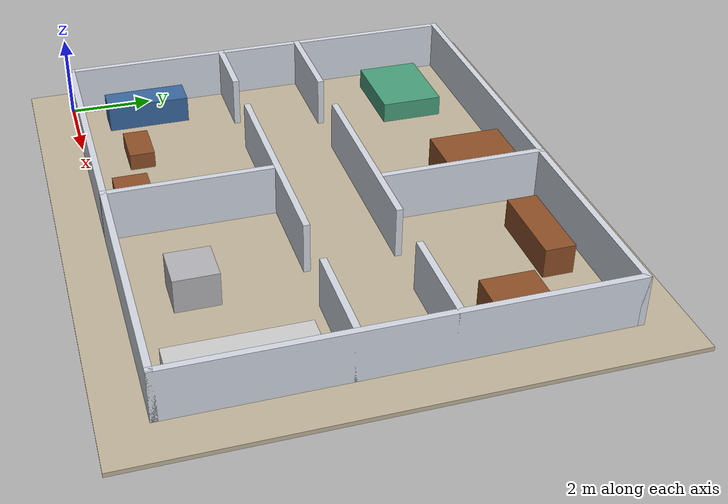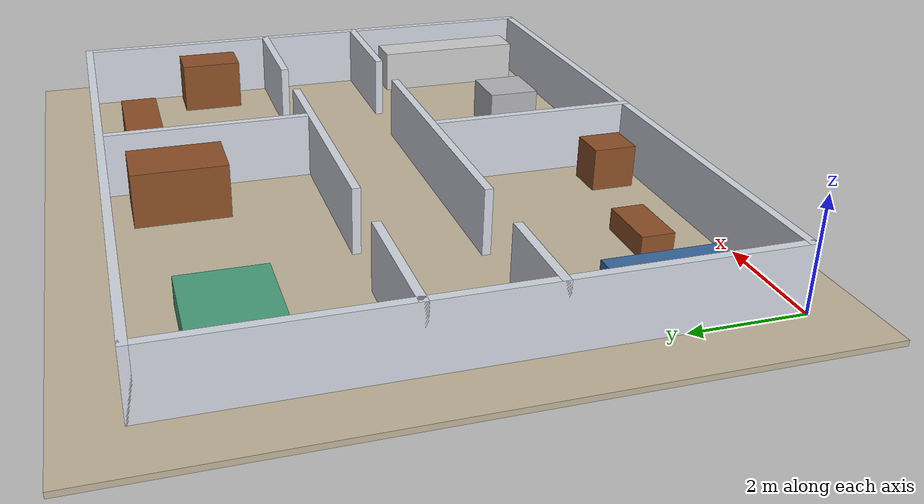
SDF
<?xml version="1.0"?>
<sdf version="1.6"><world name="jev_house">
  <plugin name="gazebo_state" filename="libgazebo_ros_state.so"><ros><namespace>/</namespace></ros><update_rate>20.0</update_rate></plugin>
  <gravity>0 0 -9.81</gravity>
  <physics type="ode"><max_step_size>0.001</max_step_size><real_time_update_rate>1000</real_time_update_rate></physics>
  <scene><ambient>0.6 0.6 0.6 1</ambient><shadows>false</shadows></scene>
  <light name="sun" type="directional"><pose>0 0 12 0 0 0</pose><diffuse>0.8 0.8 0.8 1</diffuse>
    <specular>0.2 0.2 0.2 1</specular><direction>-0.3 0.2 -1</direction><cast_shadows>false</cast_shadows></light>
  <gui fullscreen="0"><camera name="user_camera"><pose>6 -3 14 0 1.08 1.57</pose>
    <view_controller>orbit</view_controller></camera></gui>
  <model name="floor"><static>true</static><pose>6 5 -0.05 0 0 0</pose><link name="floor">
    <collision name="floor"><geometry><box><size>14 12 0.1</size></box></geometry></collision>
    <visual name="floor"><geometry><box><size>14 12 0.1</size></box></geometry>
      <material><ambient>0.75 0.70 0.60 1</ambient><diffuse>0.75 0.70 0.60 1</diffuse></material></visual>
  </link></model>
  <model name="south"><static>true</static>
      <pose>6.0 0.075 0.6 0 0 0</pose><link name="body">
      <collision name="collision"><geometry><box><size>12 0.15 1.2</size></box></geometry></collision>
      <visual name="visual"><geometry><box><size>12 0.15 1.2</size></box></geometry>
      <material><ambient>0.82 0.84 0.88 1</ambient><diffuse>0.82 0.84 0.88 1</diffuse></material></visual>
      </link></model>
<model name="north"><static>true</static>
      <pose>6.0 9.925 0.6 0 0 0</pose><link name="body">
      <collision name="collision"><geometry><box><size>12 0.15000000000000036 1.2</size></box></geometry></collision>
      <visual name="visual"><geometry><box><size>12 0.15000000000000036 1.2</size></box></geometry>
      <material><ambient>0.82 0.84 0.88 1</ambient><diffuse>0.82 0.84 0.88 1</diffuse></material></visual>
      </link></model>
<model name="west"><static>true</static>
      <pose>0.075 5.0 0.6 0 0 0</pose><link name="body">
      <collision name="collision"><geometry><box><size>0.15 10 1.2</size></box></geometry></collision>
      <visual name="visual"><geometry><box><size>0.15 10 1.2</size></box></geometry>
      <material><ambient>0.82 0.84 0.88 1</ambient><diffuse>0.82 0.84 0.88 1</diffuse></material></visual>
      </link></model>
<model name="east"><static>true</static>
      <pose>11.925 5.0 0.6 0 0 0</pose><link name="body">
      <collision name="collision"><geometry><box><size>0.15000000000000036 10 1.2</size></box></geometry></collision>
      <visual name="visual"><geometry><box><size>0.15000000000000036 10 1.2</size></box></geometry>
      <material><ambient>0.82 0.84 0.88 1</ambient><diffuse>0.82 0.84 0.88 1</diffuse></material></visual>
      </link></model>
<model name="living_hall_left"><static>true</static>
      <pose>0.9 3.9749999999999996 0.6 0 0 0</pose><link name="body">
      <collision name="collision"><geometry><box><size>1.8 0.1499999999999999 1.2</size></box></geometry></collision>
      <visual name="visual"><geometry><box><size>1.8 0.1499999999999999 1.2</size></box></geometry>
      <material><ambient>0.82 0.84 0.88 1</ambient><diffuse>0.82 0.84 0.88 1</diffuse></material></visual>
      </link></model>
<model name="living_hall_right"><static>true</static>
      <pose>5.7 3.9749999999999996 0.6 0 0 0</pose><link name="body">
      <collision name="collision"><geometry><box><size>5.4 0.1499999999999999 1.2</size></box></geometry></collision>
      <visual name="visual"><geometry><box><size>5.4 0.1499999999999999 1.2</size></box></geometry>
      <material><ambient>0.82 0.84 0.88 1</ambient><diffuse>0.82 0.84 0.88 1</diffuse></material></visual>
      </link></model>
<model name="kitchen_hall_right"><static>true</static>
      <pose>10.8 3.9749999999999996 0.6 0 0 0</pose><link name="body">
      <collision name="collision"><geometry><box><size>2.4000000000000004 0.1499999999999999 1.2</size></box></geometry></collision>
      <visual name="visual"><geometry><box><size>2.4000000000000004 0.1499999999999999 1.2</size></box></geometry>
      <material><ambient>0.82 0.84 0.88 1</ambient><diffuse>0.82 0.84 0.88 1</diffuse></material></visual>
      </link></model>
<model name="kitchen_divider"><static>true</static>
      <pose>5.975 1.95 0.6 0 0 0</pose><link name="body">
      <collision name="collision"><geometry><box><size>0.14999999999999947 3.9 1.2</size></box></geometry></collision>
      <visual name="visual"><geometry><box><size>0.14999999999999947 3.9 1.2</size></box></geometry>
      <material><ambient>0.82 0.84 0.88 1</ambient><diffuse>0.82 0.84 0.88 1</diffuse></material></visual>
      </link></model>
<model name="bedroom_hall_left"><static>true</static>
      <pose>1.2 6.025 0.6 0 0 0</pose><link name="body">
      <collision name="collision"><geometry><box><size>2.4 0.14999999999999947 1.2</size></box></geometry></collision>
      <visual name="visual"><geometry><box><size>2.4 0.14999999999999947 1.2</size></box></geometry>
      <material><ambient>0.82 0.84 0.88 1</ambient><diffuse>0.82 0.84 0.88 1</diffuse></material></visual>
      </link></model>
<model name="bedroom_hall_right"><static>true</static>
      <pose>6.0 6.025 0.6 0 0 0</pose><link name="body">
      <collision name="collision"><geometry><box><size>4.800000000000001 0.14999999999999947 1.2</size></box></geometry></collision>
      <visual name="visual"><geometry><box><size>4.800000000000001 0.14999999999999947 1.2</size></box></geometry>
      <material><ambient>0.82 0.84 0.88 1</ambient><diffuse>0.82 0.84 0.88 1</diffuse></material></visual>
      </link></model>
<model name="office_hall_right"><static>true</static>
      <pose>10.8 6.025 0.6 0 0 0</pose><link name="body">
      <collision name="collision"><geometry><box><size>2.4000000000000004 0.14999999999999947 1.2</size></box></geometry></collision>
      <visual name="visual"><geometry><box><size>2.4000000000000004 0.14999999999999947 1.2</size></box></geometry>
      <material><ambient>0.82 0.84 0.88 1</ambient><diffuse>0.82 0.84 0.88 1</diffuse></material></visual>
      </link></model>
<model name="office_divider"><static>true</static>
      <pose>6.975 8.05 0.6 0 0 0</pose><link name="body">
      <collision name="collision"><geometry><box><size>0.14999999999999947 3.9000000000000004 1.2</size></box></geometry></collision>
      <visual name="visual"><geometry><box><size>0.14999999999999947 3.9000000000000004 1.2</size></box></geometry>
      <material><ambient>0.82 0.84 0.88 1</ambient><diffuse>0.82 0.84 0.88 1</diffuse></material></visual>
      </link></model>
<model name="sofa"><static>true</static>
      <pose>0.925 1.7999999999999998 0.325 0 0 0</pose><link name="body">
      <collision name="collision"><geometry><box><size>0.75 1.9999999999999998 0.65</size></box></geometry></collision>
      <visual name="visual"><geometry><box><size>0.75 1.9999999999999998 0.65</size></box></geometry>
      <material><ambient>0.22 0.40 0.62 1</ambient><diffuse>0.22 0.40 0.62 1</diffuse></material></visual>
      </link></model>
<model name="coffee_table"><static>true</static>
      <pose>2.75 1.3 0.2 0 0 0</pose><link name="body">
      <collision name="collision"><geometry><box><size>1.0999999999999996 0.6000000000000001 0.4</size></box></geometry></collision>
      <visual name="visual"><geometry><box><size>1.0999999999999996 0.6000000000000001 0.4</size></box></geometry>
      <material><ambient>0.55 0.31 0.15 1</ambient><diffuse>0.55 0.31 0.15 1</diffuse></material></visual>
      </link></model>
<model name="living_cabinet"><static>true</static>
      <pose>5.15 0.8 0.4 0 0 0</pose><link name="body">
      <collision name="collision"><geometry><box><size>0.7000000000000002 0.7999999999999999 0.8</size></box></geometry></collision>
      <visual name="visual"><geometry><box><size>0.7000000000000002 0.7999999999999999 0.8</size></box></geometry>
      <material><ambient>0.55 0.31 0.15 1</ambient><diffuse>0.55 0.31 0.15 1</diffuse></material></visual>
      </link></model>
<model name="kitchen_island"><static>true</static>
      <pose>8.5 1.5 0.4 0 0 0</pose><link name="body">
      <collision name="collision"><geometry><box><size>1 1.0 0.8</size></box></geometry></collision>
      <visual name="visual"><geometry><box><size>1 1.0 0.8</size></box></geometry>
      <material><ambient>0.7 0.7 0.72 1</ambient><diffuse>0.7 0.7 0.72 1</diffuse></material></visual>
      </link></model>
<model name="kitchen_counter"><static>true</static>
      <pose>11.35 1.9 0.425 0 0 0</pose><link name="body">
      <collision name="collision"><geometry><box><size>0.6999999999999993 3.0 0.85</size></box></geometry></collision>
      <visual name="visual"><geometry><box><size>0.6999999999999993 3.0 0.85</size></box></geometry>
      <material><ambient>0.8 0.8 0.8 1</ambient><diffuse>0.8 0.8 0.8 1</diffuse></material></visual>
      </link></model>
<model name="bed"><static>true</static>
      <pose>1.7999999999999998 8.35 0.25 0 0 0</pose><link name="body">
      <collision name="collision"><geometry><box><size>1.9999999999999998 1.5 0.5</size></box></geometry></collision>
      <visual name="visual"><geometry><box><size>1.9999999999999998 1.5 0.5</size></box></geometry>
      <material><ambient>0.28 0.62 0.48 1</ambient><diffuse>0.28 0.62 0.48 1</diffuse></material></visual>
      </link></model>
<model name="wardrobe"><static>true</static>
      <pose>6.05 8.65 0.5 0 0 0</pose><link name="body">
      <collision name="collision"><geometry><box><size>1.0999999999999996 1.7000000000000002 1.0</size></box></geometry></collision>
      <visual name="visual"><geometry><box><size>1.0999999999999996 1.7000000000000002 1.0</size></box></geometry>
      <material><ambient>0.55 0.31 0.15 1</ambient><diffuse>0.55 0.31 0.15 1</diffuse></material></visual>
      </link></model>
<model name="office_desk"><static>true</static>
      <pose>9.0 9.05 0.35 0 0 0</pose><link name="body">
      <collision name="collision"><geometry><box><size>2 0.7000000000000011 0.7</size></box></geometry></collision>
      <visual name="visual"><geometry><box><size>2 0.7000000000000011 0.7</size></box></geometry>
      <material><ambient>0.55 0.31 0.15 1</ambient><diffuse>0.55 0.31 0.15 1</diffuse></material></visual>
      </link></model>
<model name="bookcase"><static>true</static>
      <pose>11.3 7.4 0.5 0 0 0</pose><link name="body">
      <collision name="collision"><geometry><box><size>0.7999999999999989 1.2000000000000002 1.0</size></box></geometry></collision>
      <visual name="visual"><geometry><box><size>0.7999999999999989 1.2000000000000002 1.0</size></box></geometry>
      <material><ambient>0.55 0.31 0.15 1</ambient><diffuse>0.55 0.31 0.15 1</diffuse></material></visual>
      </link></model>
</world></sdf>
